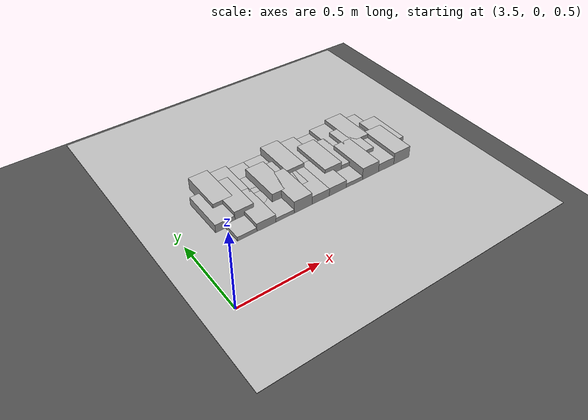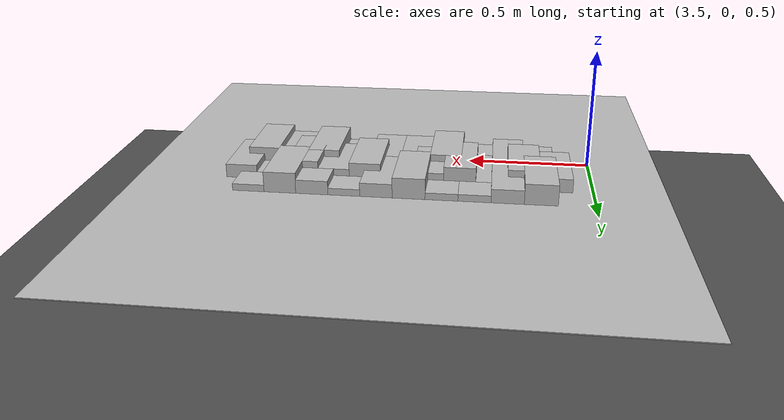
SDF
<sdf version="1.6">
 <world name="default">
  <model name="ground_plane">
   <static>1</static>
   <link name="link">
    <collision name="collision">
     <geometry><plane><normal>0 0 1</normal><size>100 100</size></plane></geometry>
     <surface><friction><ode><mu>100</mu><mu2>50</mu2></ode></friction></surface>
    </collision>
    <visual name="visual">
     <cast_shadows>0</cast_shadows>
     <geometry><plane><normal>0 0 1</normal><size>100 100</size></plane></geometry>
     <material>
      <script><uri>file://media/materials/scripts/gazebo.material</uri><name>Gazebo/Grey</name></script>
     </material>
    </visual>
   </link>
  </model>
  <model name="frc2016_roughterrain_0">
   <link name="link_clone_20">
    <pose>4.34688 0.460993 -0.073164 0 -0 0</pose>
    <inertial>
     <inertia><ixx>nan</ixx><ixy>0</ixy><ixz>0</ixz><iyy>nan</iyy><iyz>0</iyz><izz>nan</izz></inertia>
     <mass>0</mass>
    </inertial>
    <visual name="row2_block6_sm">
     <pose>0 0 0.09698 0 -0 0</pose>
     <geometry><box><size>0.115452 0.257474 0.0254</size></box></geometry>
     <material><shader type="pixel"/></material>
    </visual>
    <visual name="row1_block3_md">
     <pose>0.28575 0.1143 0.10968 0 -0 0</pose>
     <geometry><box><size>0.115452 0.257474 0.0508</size></box></geometry>
     <material><shader type="pixel"/></material>
    </visual>
    <visual name="row1_block5_md">
     <pose>0.05715 0.1143 0.10968 0 -0 0</pose>
     <geometry><box><size>0.115452 0.257474 0.0508</size></box></geometry>
     <material><shader type="pixel"/></material>
    </visual>
    <visual name="row1_block2_lg">
     <pose>0.40005 0.1143 0.12238 0 -0 0</pose>
     <geometry><box><size>0.115452 0.257474 0.0762</size></box></geometry>
     <material><shader type="pixel"/></material>
    </visual>
    <visual name="row1_block4_sm">
     <pose>0.17145 0.1143 0.09698 0 -0 0</pose>
     <geometry><box><size>0.115452 0.257474 0.0254</size></box></geometry>
     <material><shader type="pixel"/></material>
    </visual>
    <visual name="platform">
     <pose>0 0 0.08269 0 -0 0</pose>
     <geometry><box><size>1.91826 2.01688 0.003175</size></box></geometry>
     <material><shader type="pixel"/></material>
    </visual>
    <visual name="row1_block1_sm">
     <pose>0.51435 0.1143 0.09698 0 -0 0</pose>
     <geometry><box><size>0.115452 0.257474 0.0254</size></box></geometry>
     <material><shader type="pixel"/></material>
    </visual>
    <visual name="row1_block6_lg">
     <pose>-0.05715 0.1143 0.12238 0 -0 0</pose>
     <geometry><box><size>0.115452 0.257474 0.0762</size></box></geometry>
     <material><shader type="pixel"/></material>
    </visual>
    <visual name="row1_block7_sm">
     <pose>-0.17145 0.1143 0.09698 0 -0 0</pose>
     <geometry><box><size>0.115452 0.257474 0.0254</size></box></geometry>
     <material><shader type="pixel"/></material>
    </visual>
    <visual name="row1_block8_sm">
     <pose>-0.28575 0.1143 0.09698 0 -0 0</pose>
     <geometry><box><size>0.115452 0.257474 0.0254</size></box></geometry>
     <material><shader type="pixel"/></material>
    </visual>
    <visual name="row1_block9_md">
     <pose>-0.40005 0.1143 0.10968 0 -0 0</pose>
     <geometry><box><size>0.115452 0.257474 0.0508</size></box></geometry>
     <material><shader type="pixel"/></material>
    </visual>
    <visual name="row1_block10_lg">
     <pose>-0.51435 0.1143 0.12238 0 -0 0</pose>
     <geometry><box><size>0.115452 0.257474 0.0762</size></box></geometry>
     <material><shader type="pixel"/></material>
    </visual>
    <visual name="row2_block1_md">
     <pose>0.5715 0 0.10968 0 -0 0</pose>
     <geometry><box><size>0.115452 0.257474 0.0508</size></box></geometry>
     <material><shader type="pixel"/></material>
    </visual>
    <visual name="row2_block2_sm">
     <pose>0.4572 0 0.09698 0 -0 0</pose>
     <geometry><box><size>0.115452 0.257474 0.0254</size></box></geometry>
     <material><shader type="pixel"/></material>
    </visual>
    <visual name="row2_block3_lg">
     <pose>0.3429 0 0.12238 0 -0 0</pose>
     <geometry><box><size>0.115452 0.257474 0.0762</size></box></geometry>
     <material><shader type="pixel"/></material>
    </visual>
    <visual name="row2_block4_md">
     <pose>0.2286 0 0.10968 0 -0 0</pose>
     <geometry><box><size>0.115452 0.257474 0.0508</size></box></geometry>
     <material><shader type="pixel"/></material>
    </visual>
    <visual name="row2_block5_lg">
     <pose>0.1143 0 0.12238 0 -0 0</pose>
     <geometry><box><size>0.115452 0.257474 0.0762</size></box></geometry>
     <material><shader type="pixel"/></material>
    </visual>
    <visual name="row2_block7_md">
     <pose>-0.1143 0 0.10968 0 -0 0</pose>
     <geometry><box><size>0.115452 0.257474 0.0508</size></box></geometry>
     <material><shader type="pixel"/></material>
    </visual>
    <visual name="row2_block8_lg">
     <pose>-0.2286 0 0.12238 0 -0 0</pose>
     <geometry><box><size>0.115452 0.257474 0.0762</size></box></geometry>
     <material><shader type="pixel"/></material>
    </visual>
    <visual name="row2_block9_sm">
     <pose>-0.3429 0 0.09698 0 -0 0</pose>
     <geometry><box><size>0.115452 0.257474 0.0254</size></box></geometry>
     <material><shader type="pixel"/></material>
    </visual>
    <visual name="row2_block10_lg">
     <pose>-0.4572 0 0.12238 0 -0 0</pose>
     <geometry><box><size>0.115452 0.257474 0.0762</size></box></geometry>
     <material><shader type="pixel"/></material>
    </visual>
    <visual name="row2_block11_md">
     <pose>-0.5715 0 0.10968 0 -0 0</pose>
     <geometry><box><size>0.115452 0.257474 0.0508</size></box></geometry>
     <material><shader type="pixel"/></material>
    </visual>
    <visual name="row3_block1_lg">
     <pose>0.51435 -0.1143 0.12238 0 -0 0</pose>
     <geometry><box><size>0.115452 0.257474 0.0762</size></box></geometry>
     <material><shader type="pixel"/></material>
    </visual>
    <visual name="row3_block2_md">
     <pose>0.40005 -0.1143 0.10968 0 -0 0</pose>
     <geometry><box><size>0.115452 0.257474 0.0508</size></box></geometry>
     <material><shader type="pixel"/></material>
    </visual>
    <visual name="row3_block3_lg">
     <pose>0.28575 -0.1143 0.12238 0 -0 0</pose>
     <geometry><box><size>0.115452 0.257474 0.0762</size></box></geometry>
     <material><shader type="pixel"/></material>
    </visual>
    <visual name="row3_block4_sm">
     <pose>0.17145 -0.1143 0.09698 0 -0 0</pose>
     <geometry><box><size>0.115452 0.257474 0.0254</size></box></geometry>
     <material><shader type="pixel"/></material>
    </visual>
    <visual name="row3_block5_md">
     <pose>0.05715 -0.1143 0.10968 0 -0 0</pose>
     <geometry><box><size>0.115452 0.257474 0.0508</size></box></geometry>
     <material><shader type="pixel"/></material>
    </visual>
    <visual name="row3_block6_md">
     <pose>-0.05715 -0.1143 0.10968 0 -0 0</pose>
     <geometry><box><size>0.115452 0.257474 0.0508</size></box></geometry>
     <material><shader type="pixel"/></material>
    </visual>
    <visual name="row3_block8_sm">
     <pose>-0.28575 -0.1143 0.09698 0 -0 0</pose>
     <geometry><box><size>0.115452 0.257474 0.0254</size></box></geometry>
     <material><shader type="pixel"/></material>
    </visual>
    <visual name="row3_block7_lg">
     <pose>-0.17145 -0.1143 0.12238 0 -0 0</pose>
     <geometry><box><size>0.115452 0.257474 0.0762</size></box></geometry>
     <material><shader type="pixel"/></material>
    </visual>
    <visual name="row3_block9_md">
     <pose>-0.40005 -0.1143 0.10968 0 -0 0</pose>
     <geometry><box><size>0.115452 0.257474 0.0508</size></box></geometry>
     <material><shader type="pixel"/></material>
    </visual>
    <visual name="row3_block10_sm">
     <pose>-0.51435 -0.1143 0.09698 0 -0 0</pose>
     <geometry><box><size>0.115452 0.257474 0.0254</size></box></geometry>
     <material><shader type="pixel"/></material>
    </visual>
    <collision name="row2_block5_lg_0">
     <pose>0.1143 0 0.12238 0 -0 0</pose>
     <geometry><box><size>0.115452 0.257474 0.0762</size></box></geometry>
     <surface>
      <friction>
       <ode><mu>1</mu><mu2>1</mu2><fdir1>0 0 0</fdir1><slip1>0</slip1><slip2>0</slip2></ode>
       <torsional>
        <coefficient>1</coefficient>
        <patch_radius>0</patch_radius>
        <surface_radius>0</surface_radius>
        <use_patch_radius>1</use_patch_radius>
        <ode><slip>0</slip></ode>
       </torsional>
      </friction>
      <bounce><restitution_coefficient>0</restitution_coefficient><threshold>1e+06</threshold></bounce>
      <contact>
       <collide_without_contact>0</collide_without_contact>
       <collide_without_contact_bitmask>1</collide_without_contact_bitmask>
       <collide_bitmask>1</collide_bitmask>
       <ode>
        <soft_cfm>0</soft_cfm>
        <soft_erp>0.2</soft_erp>
        <kp>1e+13</kp>
        <kd>1</kd>
        <max_vel>0.01</max_vel>
        <min_depth>0</min_depth>
       </ode>
       <bullet>
        <split_impulse>1</split_impulse>
        <split_impulse_penetration_threshold>-0.01</split_impulse_penetration_threshold>
        <soft_cfm>0</soft_cfm>
        <soft_erp>0.2</soft_erp>
        <kp>1e+13</kp>
        <kd>1</kd>
       </bullet>
      </contact>
     </surface>
    </collision>
    <collision name="platform_0">
     <pose>0 0 0.08269 0 -0 0</pose>
     <geometry><box><size>1.91826 2.01688 0.003175</size></box></geometry>
     <surface>
      <friction>
       <ode><mu>1</mu><mu2>1</mu2><fdir1>0 0 0</fdir1><slip1>0</slip1><slip2>0</slip2></ode>
       <torsional>
        <coefficient>1</coefficient>
        <patch_radius>0</patch_radius>
        <surface_radius>0</surface_radius>
        <use_patch_radius>1</use_patch_radius>
        <ode><slip>0</slip></ode>
       </torsional>
      </friction>
      <bounce><restitution_coefficient>0</restitution_coefficient><threshold>1e+06</threshold></bounce>
      <contact>
       <collide_without_contact>0</collide_without_contact>
       <collide_without_contact_bitmask>1</collide_without_contact_bitmask>
       <collide_bitmask>1</collide_bitmask>
       <ode>
        <soft_cfm>0</soft_cfm>
        <soft_erp>0.2</soft_erp>
        <kp>1e+13</kp>
        <kd>1</kd>
        <max_vel>0.01</max_vel>
        <min_depth>0</min_depth>
       </ode>
       <bullet>
        <split_impulse>1</split_impulse>
        <split_impulse_penetration_threshold>-0.01</split_impulse_penetration_threshold>
        <soft_cfm>0</soft_cfm>
        <soft_erp>0.2</soft_erp>
        <kp>1e+13</kp>
        <kd>1</kd>
       </bullet>
      </contact>
     </surface>
    </collision>
    <collision name="row1_block1_sm_0">
     <pose>0.51435 0.1143 0.09698 0 -0 0</pose>
     <geometry><box><size>0.115452 0.257474 0.0254</size></box></geometry>
     <surface>
      <friction>
       <ode><mu>1</mu><mu2>1</mu2><fdir1>0 0 0</fdir1><slip1>0</slip1><slip2>0</slip2></ode>
       <torsional>
        <coefficient>1</coefficient>
        <patch_radius>0</patch_radius>
        <surface_radius>0</surface_radius>
        <use_patch_radius>1</use_patch_radius>
        <ode><slip>0</slip></ode>
       </torsional>
      </friction>
      <bounce><restitution_coefficient>0</restitution_coefficient><threshold>1e+06</threshold></bounce>
      <contact>
       <collide_without_contact>0</collide_without_contact>
       <collide_without_contact_bitmask>1</collide_without_contact_bitmask>
       <collide_bitmask>1</collide_bitmask>
       <ode>
        <soft_cfm>0</soft_cfm>
        <soft_erp>0.2</soft_erp>
        <kp>1e+13</kp>
        <kd>1</kd>
        <max_vel>0.01</max_vel>
        <min_depth>0</min_depth>
       </ode>
       <bullet>
        <split_impulse>1</split_impulse>
        <split_impulse_penetration_threshold>-0.01</split_impulse_penetration_threshold>
        <soft_cfm>0</soft_cfm>
        <soft_erp>0.2</soft_erp>
        <kp>1e+13</kp>
        <kd>1</kd>
       </bullet>
      </contact>
     </surface>
    </collision>
    <collision name="row1_block3_md_0">
     <pose>0.28575 0.1143 0.10968 0 -0 0</pose>
     <geometry><box><size>0.115452 0.257474 0.0508</size></box></geometry>
     <surface>
      <friction>
       <ode><mu>1</mu><mu2>1</mu2><fdir1>0 0 0</fdir1><slip1>0</slip1><slip2>0</slip2></ode>
       <torsional>
        <coefficient>1</coefficient>
        <patch_radius>0</patch_radius>
        <surface_radius>0</surface_radius>
        <use_patch_radius>1</use_patch_radius>
        <ode><slip>0</slip></ode>
       </torsional>
      </friction>
      <bounce><restitution_coefficient>0</restitution_coefficient><threshold>1e+06</threshold></bounce>
      <contact>
       <collide_without_contact>0</collide_without_contact>
       <collide_without_contact_bitmask>1</collide_without_contact_bitmask>
       <collide_bitmask>1</collide_bitmask>
       <ode>
        <soft_cfm>0</soft_cfm>
        <soft_erp>0.2</soft_erp>
        <kp>1e+13</kp>
        <kd>1</kd>
        <max_vel>0.01</max_vel>
        <min_depth>0</min_depth>
       </ode>
       <bullet>
        <split_impulse>1</split_impulse>
        <split_impulse_penetration_threshold>-0.01</split_impulse_penetration_threshold>
        <soft_cfm>0</soft_cfm>
        <soft_erp>0.2</soft_erp>
        <kp>1e+13</kp>
        <kd>1</kd>
       </bullet>
      </contact>
     </surface>
    </collision>
    <collision name="row1_block5_md_0">
     <pose>0.05715 0.1143 0.10968 0 -0 0</pose>
     <geometry><box><size>0.115452 0.257474 0.0508</size></box></geometry>
     <surface>
      <friction>
       <ode><mu>1</mu><mu2>1</mu2><fdir1>0 0 0</fdir1><slip1>0</slip1><slip2>0</slip2></ode>
       <torsional>
        <coefficient>1</coefficient>
        <patch_radius>0</patch_radius>
        <surface_radius>0</surface_radius>
        <use_patch_radius>1</use_patch_radius>
        <ode><slip>0</slip></ode>
       </torsional>
      </friction>
      <bounce><restitution_coefficient>0</restitution_coefficient><threshold>1e+06</threshold></bounce>
      <contact>
       <collide_without_contact>0</collide_without_contact>
       <collide_without_contact_bitmask>1</collide_without_contact_bitmask>
       <collide_bitmask>1</collide_bitmask>
       <ode>
        <soft_cfm>0</soft_cfm>
        <soft_erp>0.2</soft_erp>
        <kp>1e+13</kp>
        <kd>1</kd>
        <max_vel>0.01</max_vel>
        <min_depth>0</min_depth>
       </ode>
       <bullet>
        <split_impulse>1</split_impulse>
        <split_impulse_penetration_threshold>-0.01</split_impulse_penetration_threshold>
        <soft_cfm>0</soft_cfm>
        <soft_erp>0.2</soft_erp>
        <kp>1e+13</kp>
        <kd>1</kd>
       </bullet>
      </contact>
     </surface>
    </collision>
    <collision name="row1_block2_lg_0">
     <pose>0.40005 0.1143 0.12238 0 -0 0</pose>
     <geometry><box><size>0.115452 0.257474 0.0762</size></box></geometry>
     <surface>
      <friction>
       <ode><mu>1</mu><mu2>1</mu2><fdir1>0 0 0</fdir1><slip1>0</slip1><slip2>0</slip2></ode>
       <torsional>
        <coefficient>1</coefficient>
        <patch_radius>0</patch_radius>
        <surface_radius>0</surface_radius>
        <use_patch_radius>1</use_patch_radius>
        <ode><slip>0</slip></ode>
       </torsional>
      </friction>
      <bounce><restitution_coefficient>0</restitution_coefficient><threshold>1e+06</threshold></bounce>
      <contact>
       <collide_without_contact>0</collide_without_contact>
       <collide_without_contact_bitmask>1</collide_without_contact_bitmask>
       <collide_bitmask>1</collide_bitmask>
       <ode>
        <soft_cfm>0</soft_cfm>
        <soft_erp>0.2</soft_erp>
        <kp>1e+13</kp>
        <kd>1</kd>
        <max_vel>0.01</max_vel>
        <min_depth>0</min_depth>
       </ode>
       <bullet>
        <split_impulse>1</split_impulse>
        <split_impulse_penetration_threshold>-0.01</split_impulse_penetration_threshold>
        <soft_cfm>0</soft_cfm>
        <soft_erp>0.2</soft_erp>
        <kp>1e+13</kp>
        <kd>1</kd>
       </bullet>
      </contact>
     </surface>
    </collision>
    <collision name="row1_block4_sm_0">
     <pose>0.17145 0.1143 0.09698 0 -0 0</pose>
     <geometry><box><size>0.115452 0.257474 0.0254</size></box></geometry>
     <surface>
      <friction>
       <ode><mu>1</mu><mu2>1</mu2><fdir1>0 0 0</fdir1><slip1>0</slip1><slip2>0</slip2></ode>
       <torsional>
        <coefficient>1</coefficient>
        <patch_radius>0</patch_radius>
        <surface_radius>0</surface_radius>
        <use_patch_radius>1</use_patch_radius>
        <ode><slip>0</slip></ode>
       </torsional>
      </friction>
      <bounce><restitution_coefficient>0</restitution_coefficient><threshold>1e+06</threshold></bounce>
      <contact>
       <collide_without_contact>0</collide_without_contact>
       <collide_without_contact_bitmask>1</collide_without_contact_bitmask>
       <collide_bitmask>1</collide_bitmask>
       <ode>
        <soft_cfm>0</soft_cfm>
        <soft_erp>0.2</soft_erp>
        <kp>1e+13</kp>
        <kd>1</kd>
        <max_vel>0.01</max_vel>
        <min_depth>0</min_depth>
       </ode>
       <bullet>
        <split_impulse>1</split_impulse>
        <split_impulse_penetration_threshold>-0.01</split_impulse_penetration_threshold>
        <soft_cfm>0</soft_cfm>
        <soft_erp>0.2</soft_erp>
        <kp>1e+13</kp>
        <kd>1</kd>
       </bullet>
      </contact>
     </surface>
    </collision>
    <collision name="row1_block6_lg_0">
     <pose>-0.05715 0.1143 0.12238 0 -0 0</pose>
     <geometry><box><size>0.115452 0.257474 0.0762</size></box></geometry>
     <surface>
      <friction>
       <ode><mu>1</mu><mu2>1</mu2><fdir1>0 0 0</fdir1><slip1>0</slip1><slip2>0</slip2></ode>
       <torsional>
        <coefficient>1</coefficient>
        <patch_radius>0</patch_radius>
        <surface_radius>0</surface_radius>
        <use_patch_radius>1</use_patch_radius>
        <ode><slip>0</slip></ode>
       </torsional>
      </friction>
      <bounce><restitution_coefficient>0</restitution_coefficient><threshold>1e+06</threshold></bounce>
      <contact>
       <collide_without_contact>0</collide_without_contact>
       <collide_without_contact_bitmask>1</collide_without_contact_bitmask>
       <collide_bitmask>1</collide_bitmask>
       <ode>
        <soft_cfm>0</soft_cfm>
        <soft_erp>0.2</soft_erp>
        <kp>1e+13</kp>
        <kd>1</kd>
        <max_vel>0.01</max_vel>
        <min_depth>0</min_depth>
       </ode>
       <bullet>
        <split_impulse>1</split_impulse>
        <split_impulse_penetration_threshold>-0.01</split_impulse_penetration_threshold>
        <soft_cfm>0</soft_cfm>
        <soft_erp>0.2</soft_erp>
        <kp>1e+13</kp>
        <kd>1</kd>
       </bullet>
      </contact>
     </surface>
    </collision>
    <collision name="row1_block7_sm_0">
     <pose>-0.17145 0.1143 0.09698 0 -0 0</pose>
     <geometry><box><size>0.115452 0.257474 0.0254</size></box></geometry>
     <surface>
      <friction>
       <ode><mu>1</mu><mu2>1</mu2><fdir1>0 0 0</fdir1><slip1>0</slip1><slip2>0</slip2></ode>
       <torsional>
        <coefficient>1</coefficient>
        <patch_radius>0</patch_radius>
        <surface_radius>0</surface_radius>
        <use_patch_radius>1</use_patch_radius>
        <ode><slip>0</slip></ode>
       </torsional>
      </friction>
      <bounce><restitution_coefficient>0</restitution_coefficient><threshold>1e+06</threshold></bounce>
      <contact>
       <collide_without_contact>0</collide_without_contact>
       <collide_without_contact_bitmask>1</collide_without_contact_bitmask>
       <collide_bitmask>1</collide_bitmask>
       <ode>
        <soft_cfm>0</soft_cfm>
        <soft_erp>0.2</soft_erp>
        <kp>1e+13</kp>
        <kd>1</kd>
        <max_vel>0.01</max_vel>
        <min_depth>0</min_depth>
       </ode>
       <bullet>
        <split_impulse>1</split_impulse>
        <split_impulse_penetration_threshold>-0.01</split_impulse_penetration_threshold>
        <soft_cfm>0</soft_cfm>
        <soft_erp>0.2</soft_erp>
        <kp>1e+13</kp>
        <kd>1</kd>
       </bullet>
      </contact>
     </surface>
    </collision>
    <collision name="row1_block8_sm_0">
     <pose>-0.28575 0.1143 0.09698 0 -0 0</pose>
     <geometry><box><size>0.115452 0.257474 0.0254</size></box></geometry>
     <surface>
      <friction>
       <ode><mu>1</mu><mu2>1</mu2><fdir1>0 0 0</fdir1><slip1>0</slip1><slip2>0</slip2></ode>
       <torsional>
        <coefficient>1</coefficient>
        <patch_radius>0</patch_radius>
        <surface_radius>0</surface_radius>
        <use_patch_radius>1</use_patch_radius>
        <ode><slip>0</slip></ode>
       </torsional>
      </friction>
      <bounce><restitution_coefficient>0</restitution_coefficient><threshold>1e+06</threshold></bounce>
      <contact>
       <collide_without_contact>0</collide_without_contact>
       <collide_without_contact_bitmask>1</collide_without_contact_bitmask>
       <collide_bitmask>1</collide_bitmask>
       <ode>
        <soft_cfm>0</soft_cfm>
        <soft_erp>0.2</soft_erp>
        <kp>1e+13</kp>
        <kd>1</kd>
        <max_vel>0.01</max_vel>
        <min_depth>0</min_depth>
       </ode>
       <bullet>
        <split_impulse>1</split_impulse>
        <split_impulse_penetration_threshold>-0.01</split_impulse_penetration_threshold>
        <soft_cfm>0</soft_cfm>
        <soft_erp>0.2</soft_erp>
        <kp>1e+13</kp>
        <kd>1</kd>
       </bullet>
      </contact>
     </surface>
    </collision>
    <collision name="row1_block10_lg_0">
     <pose>-0.51435 0.1143 0.12238 0 -0 0</pose>
     <geometry><box><size>0.115452 0.257474 0.0762</size></box></geometry>
     <surface>
      <friction>
       <ode><mu>1</mu><mu2>1</mu2><fdir1>0 0 0</fdir1><slip1>0</slip1><slip2>0</slip2></ode>
       <torsional>
        <coefficient>1</coefficient>
        <patch_radius>0</patch_radius>
        <surface_radius>0</surface_radius>
        <use_patch_radius>1</use_patch_radius>
        <ode><slip>0</slip></ode>
       </torsional>
      </friction>
      <bounce><restitution_coefficient>0</restitution_coefficient><threshold>1e+06</threshold></bounce>
      <contact>
       <collide_without_contact>0</collide_without_contact>
       <collide_without_contact_bitmask>1</collide_without_contact_bitmask>
       <collide_bitmask>1</collide_bitmask>
       <ode>
        <soft_cfm>0</soft_cfm>
        <soft_erp>0.2</soft_erp>
        <kp>1e+13</kp>
        <kd>1</kd>
        <max_vel>0.01</max_vel>
        <min_depth>0</min_depth>
       </ode>
       <bullet>
        <split_impulse>1</split_impulse>
        <split_impulse_penetration_threshold>-0.01</split_impulse_penetration_threshold>
        <soft_cfm>0</soft_cfm>
        <soft_erp>0.2</soft_erp>
        <kp>1e+13</kp>
        <kd>1</kd>
       </bullet>
      </contact>
     </surface>
    </collision>
    <collision name="row2_block2_sm_0">
     <pose>0.4572 0 0.09698 0 -0 0</pose>
     <geometry><box><size>0.115452 0.257474 0.0254</size></box></geometry>
     <surface>
      <friction>
       <ode><mu>1</mu><mu2>1</mu2><fdir1>0 0 0</fdir1><slip1>0</slip1><slip2>0</slip2></ode>
       <torsional>
        <coefficient>1</coefficient>
        <patch_radius>0</patch_radius>
        <surface_radius>0</surface_radius>
        <use_patch_radius>1</use_patch_radius>
        <ode><slip>0</slip></ode>
       </torsional>
      </friction>
      <bounce><restitution_coefficient>0</restitution_coefficient><threshold>1e+06</threshold></bounce>
      <contact>
       <collide_without_contact>0</collide_without_contact>
       <collide_without_contact_bitmask>1</collide_without_contact_bitmask>
       <collide_bitmask>1</collide_bitmask>
       <ode>
        <soft_cfm>0</soft_cfm>
        <soft_erp>0.2</soft_erp>
        <kp>1e+13</kp>
        <kd>1</kd>
        <max_vel>0.01</max_vel>
        <min_depth>0</min_depth>
       </ode>
       <bullet>
        <split_impulse>1</split_impulse>
        <split_impulse_penetration_threshold>-0.01</split_impulse_penetration_threshold>
        <soft_cfm>0</soft_cfm>
        <soft_erp>0.2</soft_erp>
        <kp>1e+13</kp>
        <kd>1</kd>
       </bullet>
      </contact>
     </surface>
    </collision>
    <collision name="row1_block9_md_0">
     <pose>-0.40005 0.1143 0.10968 0 -0 0</pose>
     <geometry><box><size>0.115452 0.257474 0.0508</size></box></geometry>
     <surface>
      <friction>
       <ode><mu>1</mu><mu2>1</mu2><fdir1>0 0 0</fdir1><slip1>0</slip1><slip2>0</slip2></ode>
       <torsional>
        <coefficient>1</coefficient>
        <patch_radius>0</patch_radius>
        <surface_radius>0</surface_radius>
        <use_patch_radius>1</use_patch_radius>
        <ode><slip>0</slip></ode>
       </torsional>
      </friction>
      <bounce><restitution_coefficient>0</restitution_coefficient><threshold>1e+06</threshold></bounce>
      <contact>
       <collide_without_contact>0</collide_without_contact>
       <collide_without_contact_bitmask>1</collide_without_contact_bitmask>
       <collide_bitmask>1</collide_bitmask>
       <ode>
        <soft_cfm>0</soft_cfm>
        <soft_erp>0.2</soft_erp>
        <kp>1e+13</kp>
        <kd>1</kd>
        <max_vel>0.01</max_vel>
        <min_depth>0</min_depth>
       </ode>
       <bullet>
        <split_impulse>1</split_impulse>
        <split_impulse_penetration_threshold>-0.01</split_impulse_penetration_threshold>
        <soft_cfm>0</soft_cfm>
        <soft_erp>0.2</soft_erp>
        <kp>1e+13</kp>
        <kd>1</kd>
       </bullet>
      </contact>
     </surface>
    </collision>
    <collision name="row2_block1_md_0">
     <pose>0.5715 0 0.10968 0 -0 0</pose>
     <geometry><box><size>0.115452 0.257474 0.0508</size></box></geometry>
     <surface>
      <friction>
       <ode><mu>1</mu><mu2>1</mu2><fdir1>0 0 0</fdir1><slip1>0</slip1><slip2>0</slip2></ode>
       <torsional>
        <coefficient>1</coefficient>
        <patch_radius>0</patch_radius>
        <surface_radius>0</surface_radius>
        <use_patch_radius>1</use_patch_radius>
        <ode><slip>0</slip></ode>
       </torsional>
      </friction>
      <bounce><restitution_coefficient>0</restitution_coefficient><threshold>1e+06</threshold></bounce>
      <contact>
       <collide_without_contact>0</collide_without_contact>
       <collide_without_contact_bitmask>1</collide_without_contact_bitmask>
       <collide_bitmask>1</collide_bitmask>
       <ode>
        <soft_cfm>0</soft_cfm>
        <soft_erp>0.2</soft_erp>
        <kp>1e+13</kp>
        <kd>1</kd>
        <max_vel>0.01</max_vel>
        <min_depth>0</min_depth>
       </ode>
       <bullet>
        <split_impulse>1</split_impulse>
        <split_impulse_penetration_threshold>-0.01</split_impulse_penetration_threshold>
        <soft_cfm>0</soft_cfm>
        <soft_erp>0.2</soft_erp>
        <kp>1e+13</kp>
        <kd>1</kd>
       </bullet>
      </contact>
     </surface>
    </collision>
    <collision name="row2_block7_md_0">
     <pose>-0.1143 0 0.10968 0 -0 0</pose>
     <geometry><box><size>0.115452 0.257474 0.0508</size></box></geometry>
     <surface>
      <friction>
       <ode><mu>1</mu><mu2>1</mu2><fdir1>0 0 0</fdir1><slip1>0</slip1><slip2>0</slip2></ode>
       <torsional>
        <coefficient>1</coefficient>
        <patch_radius>0</patch_radius>
        <surface_radius>0</surface_radius>
        <use_patch_radius>1</use_patch_radius>
        <ode><slip>0</slip></ode>
       </torsional>
      </friction>
      <bounce><restitution_coefficient>0</restitution_coefficient><threshold>1e+06</threshold></bounce>
      <contact>
       <collide_without_contact>0</collide_without_contact>
       <collide_without_contact_bitmask>1</collide_without_contact_bitmask>
       <collide_bitmask>1</collide_bitmask>
       <ode>
        <soft_cfm>0</soft_cfm>
        <soft_erp>0.2</soft_erp>
        <kp>1e+13</kp>
        <kd>1</kd>
        <max_vel>0.01</max_vel>
        <min_depth>0</min_depth>
       </ode>
       <bullet>
        <split_impulse>1</split_impulse>
        <split_impulse_penetration_threshold>-0.01</split_impulse_penetration_threshold>
        <soft_cfm>0</soft_cfm>
        <soft_erp>0.2</soft_erp>
        <kp>1e+13</kp>
        <kd>1</kd>
       </bullet>
      </contact>
     </surface>
    </collision>
    <collision name="row2_block4_md_0">
     <pose>0.2286 0 0.10968 0 -0 0</pose>
     <geometry><box><size>0.115452 0.257474 0.0508</size></box></geometry>
     <surface>
      <friction>
       <ode><mu>1</mu><mu2>1</mu2><fdir1>0 0 0</fdir1><slip1>0</slip1><slip2>0</slip2></ode>
       <torsional>
        <coefficient>1</coefficient>
        <patch_radius>0</patch_radius>
        <surface_radius>0</surface_radius>
        <use_patch_radius>1</use_patch_radius>
        <ode><slip>0</slip></ode>
       </torsional>
      </friction>
      <bounce><restitution_coefficient>0</restitution_coefficient><threshold>1e+06</threshold></bounce>
      <contact>
       <collide_without_contact>0</collide_without_contact>
       <collide_without_contact_bitmask>1</collide_without_contact_bitmask>
       <collide_bitmask>1</collide_bitmask>
       <ode>
        <soft_cfm>0</soft_cfm>
        <soft_erp>0.2</soft_erp>
        <kp>1e+13</kp>
        <kd>1</kd>
        <max_vel>0.01</max_vel>
        <min_depth>0</min_depth>
       </ode>
       <bullet>
        <split_impulse>1</split_impulse>
        <split_impulse_penetration_threshold>-0.01</split_impulse_penetration_threshold>
        <soft_cfm>0</soft_cfm>
        <soft_erp>0.2</soft_erp>
        <kp>1e+13</kp>
        <kd>1</kd>
       </bullet>
      </contact>
     </surface>
    </collision>
    <collision name="row2_block3_lg_0">
     <pose>0.3429 0 0.12238 0 -0 0</pose>
     <geometry><box><size>0.115452 0.257474 0.0762</size></box></geometry>
     <surface>
      <friction>
       <ode><mu>1</mu><mu2>1</mu2><fdir1>0 0 0</fdir1><slip1>0</slip1><slip2>0</slip2></ode>
       <torsional>
        <coefficient>1</coefficient>
        <patch_radius>0</patch_radius>
        <surface_radius>0</surface_radius>
        <use_patch_radius>1</use_patch_radius>
        <ode><slip>0</slip></ode>
       </torsional>
      </friction>
      <bounce><restitution_coefficient>0</restitution_coefficient><threshold>1e+06</threshold></bounce>
      <contact>
       <collide_without_contact>0</collide_without_contact>
       <collide_without_contact_bitmask>1</collide_without_contact_bitmask>
       <collide_bitmask>1</collide_bitmask>
       <ode>
        <soft_cfm>0</soft_cfm>
        <soft_erp>0.2</soft_erp>
        <kp>1e+13</kp>
        <kd>1</kd>
        <max_vel>0.01</max_vel>
        <min_depth>0</min_depth>
       </ode>
       <bullet>
        <split_impulse>1</split_impulse>
        <split_impulse_penetration_threshold>-0.01</split_impulse_penetration_threshold>
        <soft_cfm>0</soft_cfm>
        <soft_erp>0.2</soft_erp>
        <kp>1e+13</kp>
        <kd>1</kd>
       </bullet>
      </contact>
     </surface>
    </collision>
    <collision name="row2_block6_sm_0">
     <pose>0 0 0.09698 0 -0 0</pose>
     <geometry><box><size>0.115452 0.257474 0.0254</size></box></geometry>
     <surface>
      <friction>
       <ode><mu>1</mu><mu2>1</mu2><fdir1>0 0 0</fdir1><slip1>0</slip1><slip2>0</slip2></ode>
       <torsional>
        <coefficient>1</coefficient>
        <patch_radius>0</patch_radius>
        <surface_radius>0</surface_radius>
        <use_patch_radius>1</use_patch_radius>
        <ode><slip>0</slip></ode>
       </torsional>
      </friction>
      <bounce><restitution_coefficient>0</restitution_coefficient><threshold>1e+06</threshold></bounce>
      <contact>
       <collide_without_contact>0</collide_without_contact>
       <collide_without_contact_bitmask>1</collide_without_contact_bitmask>
       <collide_bitmask>1</collide_bitmask>
       <ode>
        <soft_cfm>0</soft_cfm>
        <soft_erp>0.2</soft_erp>
        <kp>1e+13</kp>
        <kd>1</kd>
        <max_vel>0.01</max_vel>
        <min_depth>0</min_depth>
       </ode>
       <bullet>
        <split_impulse>1</split_impulse>
        <split_impulse_penetration_threshold>-0.01</split_impulse_penetration_threshold>
        <soft_cfm>0</soft_cfm>
        <soft_erp>0.2</soft_erp>
        <kp>1e+13</kp>
        <kd>1</kd>
       </bullet>
      </contact>
     </surface>
    </collision>
    <collision name="row2_block8_lg_0">
     <pose>-0.2286 0 0.12238 0 -0 0</pose>
     <geometry><box><size>0.115452 0.257474 0.0762</size></box></geometry>
     <surface>
      <friction>
       <ode><mu>1</mu><mu2>1</mu2><fdir1>0 0 0</fdir1><slip1>0</slip1><slip2>0</slip2></ode>
       <torsional>
        <coefficient>1</coefficient>
        <patch_radius>0</patch_radius>
        <surface_radius>0</surface_radius>
        <use_patch_radius>1</use_patch_radius>
        <ode><slip>0</slip></ode>
       </torsional>
      </friction>
      <bounce><restitution_coefficient>0</restitution_coefficient><threshold>1e+06</threshold></bounce>
      <contact>
       <collide_without_contact>0</collide_without_contact>
       <collide_without_contact_bitmask>1</collide_without_contact_bitmask>
       <collide_bitmask>1</collide_bitmask>
       <ode>
        <soft_cfm>0</soft_cfm>
        <soft_erp>0.2</soft_erp>
        <kp>1e+13</kp>
        <kd>1</kd>
        <max_vel>0.01</max_vel>
        <min_depth>0</min_depth>
       </ode>
       <bullet>
        <split_impulse>1</split_impulse>
        <split_impulse_penetration_threshold>-0.01</split_impulse_penetration_threshold>
        <soft_cfm>0</soft_cfm>
        <soft_erp>0.2</soft_erp>
        <kp>1e+13</kp>
        <kd>1</kd>
       </bullet>
      </contact>
     </surface>
    </collision>
    <collision name="row2_block10_lg_0">
     <pose>-0.4572 0 0.12238 0 -0 0</pose>
     <geometry><box><size>0.115452 0.257474 0.0762</size></box></geometry>
     <surface>
      <friction>
       <ode><mu>1</mu><mu2>1</mu2><fdir1>0 0 0</fdir1><slip1>0</slip1><slip2>0</slip2></ode>
       <torsional>
        <coefficient>1</coefficient>
        <patch_radius>0</patch_radius>
        <surface_radius>0</surface_radius>
        <use_patch_radius>1</use_patch_radius>
        <ode><slip>0</slip></ode>
       </torsional>
      </friction>
      <bounce><restitution_coefficient>0</restitution_coefficient><threshold>1e+06</threshold></bounce>
      <contact>
       <collide_without_contact>0</collide_without_contact>
       <collide_without_contact_bitmask>1</collide_without_contact_bitmask>
       <collide_bitmask>1</collide_bitmask>
       <ode>
        <soft_cfm>0</soft_cfm>
        <soft_erp>0.2</soft_erp>
        <kp>1e+13</kp>
        <kd>1</kd>
        <max_vel>0.01</max_vel>
        <min_depth>0</min_depth>
       </ode>
       <bullet>
        <split_impulse>1</split_impulse>
        <split_impulse_penetration_threshold>-0.01</split_impulse_penetration_threshold>
        <soft_cfm>0</soft_cfm>
        <soft_erp>0.2</soft_erp>
        <kp>1e+13</kp>
        <kd>1</kd>
       </bullet>
      </contact>
     </surface>
    </collision>
    <collision name="row2_block9_sm_0">
     <pose>-0.3429 0 0.09698 0 -0 0</pose>
     <geometry><box><size>0.115452 0.257474 0.0254</size></box></geometry>
     <surface>
      <friction>
       <ode><mu>1</mu><mu2>1</mu2><fdir1>0 0 0</fdir1><slip1>0</slip1><slip2>0</slip2></ode>
       <torsional>
        <coefficient>1</coefficient>
        <patch_radius>0</patch_radius>
        <surface_radius>0</surface_radius>
        <use_patch_radius>1</use_patch_radius>
        <ode><slip>0</slip></ode>
       </torsional>
      </friction>
      <bounce><restitution_coefficient>0</restitution_coefficient><threshold>1e+06</threshold></bounce>
      <contact>
       <collide_without_contact>0</collide_without_contact>
       <collide_without_contact_bitmask>1</collide_without_contact_bitmask>
       <collide_bitmask>1</collide_bitmask>
       <ode>
        <soft_cfm>0</soft_cfm>
        <soft_erp>0.2</soft_erp>
        <kp>1e+13</kp>
        <kd>1</kd>
        <max_vel>0.01</max_vel>
        <min_depth>0</min_depth>
       </ode>
       <bullet>
        <split_impulse>1</split_impulse>
        <split_impulse_penetration_threshold>-0.01</split_impulse_penetration_threshold>
        <soft_cfm>0</soft_cfm>
        <soft_erp>0.2</soft_erp>
        <kp>1e+13</kp>
        <kd>1</kd>
       </bullet>
      </contact>
     </surface>
    </collision>
    <collision name="row3_block4_sm_0">
     <pose>0.17145 -0.1143 0.09698 0 -0 0</pose>
     <geometry><box><size>0.115452 0.257474 0.0254</size></box></geometry>
     <surface>
      <friction>
       <ode><mu>1</mu><mu2>1</mu2><fdir1>0 0 0</fdir1><slip1>0</slip1><slip2>0</slip2></ode>
       <torsional>
        <coefficient>1</coefficient>
        <patch_radius>0</patch_radius>
        <surface_radius>0</surface_radius>
        <use_patch_radius>1</use_patch_radius>
        <ode><slip>0</slip></ode>
       </torsional>
      </friction>
      <bounce><restitution_coefficient>0</restitution_coefficient><threshold>1e+06</threshold></bounce>
      <contact>
       <collide_without_contact>0</collide_without_contact>
       <collide_without_contact_bitmask>1</collide_without_contact_bitmask>
       <collide_bitmask>1</collide_bitmask>
       <ode>
        <soft_cfm>0</soft_cfm>
        <soft_erp>0.2</soft_erp>
        <kp>1e+13</kp>
        <kd>1</kd>
        <max_vel>0.01</max_vel>
        <min_depth>0</min_depth>
       </ode>
       <bullet>
        <split_impulse>1</split_impulse>
        <split_impulse_penetration_threshold>-0.01</split_impulse_penetration_threshold>
        <soft_cfm>0</soft_cfm>
        <soft_erp>0.2</soft_erp>
        <kp>1e+13</kp>
        <kd>1</kd>
       </bullet>
      </contact>
     </surface>
    </collision>
    <collision name="row2_block11_md_0">
     <pose>-0.5715 0 0.10968 0 -0 0</pose>
     <geometry><box><size>0.115452 0.257474 0.0508</size></box></geometry>
     <surface>
      <friction>
       <ode><mu>1</mu><mu2>1</mu2><fdir1>0 0 0</fdir1><slip1>0</slip1><slip2>0</slip2></ode>
       <torsional>
        <coefficient>1</coefficient>
        <patch_radius>0</patch_radius>
        <surface_radius>0</surface_radius>
        <use_patch_radius>1</use_patch_radius>
        <ode><slip>0</slip></ode>
       </torsional>
      </friction>
      <bounce><restitution_coefficient>0</restitution_coefficient><threshold>1e+06</threshold></bounce>
      <contact>
       <collide_without_contact>0</collide_without_contact>
       <collide_without_contact_bitmask>1</collide_without_contact_bitmask>
       <collide_bitmask>1</collide_bitmask>
       <ode>
        <soft_cfm>0</soft_cfm>
        <soft_erp>0.2</soft_erp>
        <kp>1e+13</kp>
        <kd>1</kd>
        <max_vel>0.01</max_vel>
        <min_depth>0</min_depth>
       </ode>
       <bullet>
        <split_impulse>1</split_impulse>
        <split_impulse_penetration_threshold>-0.01</split_impulse_penetration_threshold>
        <soft_cfm>0</soft_cfm>
        <soft_erp>0.2</soft_erp>
        <kp>1e+13</kp>
        <kd>1</kd>
       </bullet>
      </contact>
     </surface>
    </collision>
    <collision name="row3_block2_md_0">
     <pose>0.40005 -0.1143 0.10968 0 -0 0</pose>
     <geometry><box><size>0.115452 0.257474 0.0508</size></box></geometry>
     <surface>
      <friction>
       <ode><mu>1</mu><mu2>1</mu2><fdir1>0 0 0</fdir1><slip1>0</slip1><slip2>0</slip2></ode>
       <torsional>
        <coefficient>1</coefficient>
        <patch_radius>0</patch_radius>
        <surface_radius>0</surface_radius>
        <use_patch_radius>1</use_patch_radius>
        <ode><slip>0</slip></ode>
       </torsional>
      </friction>
      <bounce><restitution_coefficient>0</restitution_coefficient><threshold>1e+06</threshold></bounce>
      <contact>
       <collide_without_contact>0</collide_without_contact>
       <collide_without_contact_bitmask>1</collide_without_contact_bitmask>
       <collide_bitmask>1</collide_bitmask>
       <ode>
        <soft_cfm>0</soft_cfm>
        <soft_erp>0.2</soft_erp>
        <kp>1e+13</kp>
        <kd>1</kd>
        <max_vel>0.01</max_vel>
        <min_depth>0</min_depth>
       </ode>
       <bullet>
        <split_impulse>1</split_impulse>
        <split_impulse_penetration_threshold>-0.01</split_impulse_penetration_threshold>
        <soft_cfm>0</soft_cfm>
        <soft_erp>0.2</soft_erp>
        <kp>1e+13</kp>
        <kd>1</kd>
       </bullet>
      </contact>
     </surface>
    </collision>
    <collision name="row3_block1_lg_0">
     <pose>0.51435 -0.1143 0.12238 0 -0 0</pose>
     <geometry><box><size>0.115452 0.257474 0.0762</size></box></geometry>
     <surface>
      <friction>
       <ode><mu>1</mu><mu2>1</mu2><fdir1>0 0 0</fdir1><slip1>0</slip1><slip2>0</slip2></ode>
       <torsional>
        <coefficient>1</coefficient>
        <patch_radius>0</patch_radius>
        <surface_radius>0</surface_radius>
        <use_patch_radius>1</use_patch_radius>
        <ode><slip>0</slip></ode>
       </torsional>
      </friction>
      <bounce><restitution_coefficient>0</restitution_coefficient><threshold>1e+06</threshold></bounce>
      <contact>
       <collide_without_contact>0</collide_without_contact>
       <collide_without_contact_bitmask>1</collide_without_contact_bitmask>
       <collide_bitmask>1</collide_bitmask>
       <ode>
        <soft_cfm>0</soft_cfm>
        <soft_erp>0.2</soft_erp>
        <kp>1e+13</kp>
        <kd>1</kd>
        <max_vel>0.01</max_vel>
        <min_depth>0</min_depth>
       </ode>
       <bullet>
        <split_impulse>1</split_impulse>
        <split_impulse_penetration_threshold>-0.01</split_impulse_penetration_threshold>
        <soft_cfm>0</soft_cfm>
        <soft_erp>0.2</soft_erp>
        <kp>1e+13</kp>
        <kd>1</kd>
       </bullet>
      </contact>
     </surface>
    </collision>
    <collision name="row3_block3_lg_0">
     <pose>0.28575 -0.1143 0.12238 0 -0 0</pose>
     <geometry><box><size>0.115452 0.257474 0.0762</size></box></geometry>
     <surface>
      <friction>
       <ode><mu>1</mu><mu2>1</mu2><fdir1>0 0 0</fdir1><slip1>0</slip1><slip2>0</slip2></ode>
       <torsional>
        <coefficient>1</coefficient>
        <patch_radius>0</patch_radius>
        <surface_radius>0</surface_radius>
        <use_patch_radius>1</use_patch_radius>
        <ode><slip>0</slip></ode>
       </torsional>
      </friction>
      <bounce><restitution_coefficient>0</restitution_coefficient><threshold>1e+06</threshold></bounce>
      <contact>
       <collide_without_contact>0</collide_without_contact>
       <collide_without_contact_bitmask>1</collide_without_contact_bitmask>
       <collide_bitmask>1</collide_bitmask>
       <ode>
        <soft_cfm>0</soft_cfm>
        <soft_erp>0.2</soft_erp>
        <kp>1e+13</kp>
        <kd>1</kd>
        <max_vel>0.01</max_vel>
        <min_depth>0</min_depth>
       </ode>
       <bullet>
        <split_impulse>1</split_impulse>
        <split_impulse_penetration_threshold>-0.01</split_impulse_penetration_threshold>
        <soft_cfm>0</soft_cfm>
        <soft_erp>0.2</soft_erp>
        <kp>1e+13</kp>
        <kd>1</kd>
       </bullet>
      </contact>
     </surface>
    </collision>
    <collision name="row3_block5_md_0">
     <pose>0.05715 -0.1143 0.10968 0 -0 0</pose>
     <geometry><box><size>0.115452 0.257474 0.0508</size></box></geometry>
     <surface>
      <friction>
       <ode><mu>1</mu><mu2>1</mu2><fdir1>0 0 0</fdir1><slip1>0</slip1><slip2>0</slip2></ode>
       <torsional>
        <coefficient>1</coefficient>
        <patch_radius>0</patch_radius>
        <surface_radius>0</surface_radius>
        <use_patch_radius>1</use_patch_radius>
        <ode><slip>0</slip></ode>
       </torsional>
      </friction>
      <bounce><restitution_coefficient>0</restitution_coefficient><threshold>1e+06</threshold></bounce>
      <contact>
       <collide_without_contact>0</collide_without_contact>
       <collide_without_contact_bitmask>1</collide_without_contact_bitmask>
       <collide_bitmask>1</collide_bitmask>
       <ode>
        <soft_cfm>0</soft_cfm>
        <soft_erp>0.2</soft_erp>
        <kp>1e+13</kp>
        <kd>1</kd>
        <max_vel>0.01</max_vel>
        <min_depth>0</min_depth>
       </ode>
       <bullet>
        <split_impulse>1</split_impulse>
        <split_impulse_penetration_threshold>-0.01</split_impulse_penetration_threshold>
        <soft_cfm>0</soft_cfm>
        <soft_erp>0.2</soft_erp>
        <kp>1e+13</kp>
        <kd>1</kd>
       </bullet>
      </contact>
     </surface>
    </collision>
    <collision name="row3_block7_lg_0">
     <pose>-0.17145 -0.1143 0.12238 0 -0 0</pose>
     <geometry><box><size>0.115452 0.257474 0.0762</size></box></geometry>
     <surface>
      <friction>
       <ode><mu>1</mu><mu2>1</mu2><fdir1>0 0 0</fdir1><slip1>0</slip1><slip2>0</slip2></ode>
       <torsional>
        <coefficient>1</coefficient>
        <patch_radius>0</patch_radius>
        <surface_radius>0</surface_radius>
        <use_patch_radius>1</use_patch_radius>
        <ode><slip>0</slip></ode>
       </torsional>
      </friction>
      <bounce><restitution_coefficient>0</restitution_coefficient><threshold>1e+06</threshold></bounce>
      <contact>
       <collide_without_contact>0</collide_without_contact>
       <collide_without_contact_bitmask>1</collide_without_contact_bitmask>
       <collide_bitmask>1</collide_bitmask>
       <ode>
        <soft_cfm>0</soft_cfm>
        <soft_erp>0.2</soft_erp>
        <kp>1e+13</kp>
        <kd>1</kd>
        <max_vel>0.01</max_vel>
        <min_depth>0</min_depth>
       </ode>
       <bullet>
        <split_impulse>1</split_impulse>
        <split_impulse_penetration_threshold>-0.01</split_impulse_penetration_threshold>
        <soft_cfm>0</soft_cfm>
        <soft_erp>0.2</soft_erp>
        <kp>1e+13</kp>
        <kd>1</kd>
       </bullet>
      </contact>
     </surface>
    </collision>
    <collision name="row3_block8_sm_0">
     <pose>-0.28575 -0.1143 0.09698 0 -0 0</pose>
     <geometry><box><size>0.115452 0.257474 0.0254</size></box></geometry>
     <surface>
      <friction>
       <ode><mu>1</mu><mu2>1</mu2><fdir1>0 0 0</fdir1><slip1>0</slip1><slip2>0</slip2></ode>
       <torsional>
        <coefficient>1</coefficient>
        <patch_radius>0</patch_radius>
        <surface_radius>0</surface_radius>
        <use_patch_radius>1</use_patch_radius>
        <ode><slip>0</slip></ode>
       </torsional>
      </friction>
      <bounce><restitution_coefficient>0</restitution_coefficient><threshold>1e+06</threshold></bounce>
      <contact>
       <collide_without_contact>0</collide_without_contact>
       <collide_without_contact_bitmask>1</collide_without_contact_bitmask>
       <collide_bitmask>1</collide_bitmask>
       <ode>
        <soft_cfm>0</soft_cfm>
        <soft_erp>0.2</soft_erp>
        <kp>1e+13</kp>
        <kd>1</kd>
        <max_vel>0.01</max_vel>
        <min_depth>0</min_depth>
       </ode>
       <bullet>
        <split_impulse>1</split_impulse>
        <split_impulse_penetration_threshold>-0.01</split_impulse_penetration_threshold>
        <soft_cfm>0</soft_cfm>
        <soft_erp>0.2</soft_erp>
        <kp>1e+13</kp>
        <kd>1</kd>
       </bullet>
      </contact>
     </surface>
    </collision>
    <collision name="row3_block6_md_0">
     <pose>-0.05715 -0.1143 0.10968 0 -0 0</pose>
     <geometry><box><size>0.115452 0.257474 0.0508</size></box></geometry>
     <surface>
      <friction>
       <ode><mu>1</mu><mu2>1</mu2><fdir1>0 0 0</fdir1><slip1>0</slip1><slip2>0</slip2></ode>
       <torsional>
        <coefficient>1</coefficient>
        <patch_radius>0</patch_radius>
        <surface_radius>0</surface_radius>
        <use_patch_radius>1</use_patch_radius>
        <ode><slip>0</slip></ode>
       </torsional>
      </friction>
      <bounce><restitution_coefficient>0</restitution_coefficient><threshold>1e+06</threshold></bounce>
      <contact>
       <collide_without_contact>0</collide_without_contact>
       <collide_without_contact_bitmask>1</collide_without_contact_bitmask>
       <collide_bitmask>1</collide_bitmask>
       <ode>
        <soft_cfm>0</soft_cfm>
        <soft_erp>0.2</soft_erp>
        <kp>1e+13</kp>
        <kd>1</kd>
        <max_vel>0.01</max_vel>
        <min_depth>0</min_depth>
       </ode>
       <bullet>
        <split_impulse>1</split_impulse>
        <split_impulse_penetration_threshold>-0.01</split_impulse_penetration_threshold>
        <soft_cfm>0</soft_cfm>
        <soft_erp>0.2</soft_erp>
        <kp>1e+13</kp>
        <kd>1</kd>
       </bullet>
      </contact>
     </surface>
    </collision>
    <collision name="row3_block10_sm_0">
     <pose>-0.51435 -0.1143 0.09698 0 -0 0</pose>
     <geometry><box><size>0.115452 0.257474 0.0254</size></box></geometry>
     <surface>
      <friction>
       <ode><mu>1</mu><mu2>1</mu2><fdir1>0 0 0</fdir1><slip1>0</slip1><slip2>0</slip2></ode>
       <torsional>
        <coefficient>1</coefficient>
        <patch_radius>0</patch_radius>
        <surface_radius>0</surface_radius>
        <use_patch_radius>1</use_patch_radius>
        <ode><slip>0</slip></ode>
       </torsional>
      </friction>
      <bounce><restitution_coefficient>0</restitution_coefficient><threshold>1e+06</threshold></bounce>
      <contact>
       <collide_without_contact>0</collide_without_contact>
       <collide_without_contact_bitmask>1</collide_without_contact_bitmask>
       <collide_bitmask>1</collide_bitmask>
       <ode>
        <soft_cfm>0</soft_cfm>
        <soft_erp>0.2</soft_erp>
        <kp>1e+13</kp>
        <kd>1</kd>
        <max_vel>0.01</max_vel>
        <min_depth>0</min_depth>
       </ode>
       <bullet>
        <split_impulse>1</split_impulse>
        <split_impulse_penetration_threshold>-0.01</split_impulse_penetration_threshold>
        <soft_cfm>0</soft_cfm>
        <soft_erp>0.2</soft_erp>
        <kp>1e+13</kp>
        <kd>1</kd>
       </bullet>
      </contact>
     </surface>
    </collision>
    <collision name="row3_block9_md_0">
     <pose>-0.40005 -0.1143 0.10968 0 -0 0</pose>
     <geometry><box><size>0.115452 0.257474 0.0508</size></box></geometry>
     <surface>
      <friction>
       <ode><mu>1</mu><mu2>1</mu2><fdir1>0 0 0</fdir1><slip1>0</slip1><slip2>0</slip2></ode>
       <torsional>
        <coefficient>1</coefficient>
        <patch_radius>0</patch_radius>
        <surface_radius>0</surface_radius>
        <use_patch_radius>1</use_patch_radius>
        <ode><slip>0</slip></ode>
       </torsional>
      </friction>
      <bounce><restitution_coefficient>0</restitution_coefficient><threshold>1e+06</threshold></bounce>
      <contact>
       <collide_without_contact>0</collide_without_contact>
       <collide_without_contact_bitmask>1</collide_without_contact_bitmask>
       <collide_bitmask>1</collide_bitmask>
       <ode>
        <soft_cfm>0</soft_cfm>
        <soft_erp>0.2</soft_erp>
        <kp>1e+13</kp>
        <kd>1</kd>
        <max_vel>0.01</max_vel>
        <min_depth>0</min_depth>
       </ode>
       <bullet>
        <split_impulse>1</split_impulse>
        <split_impulse_penetration_threshold>-0.01</split_impulse_penetration_threshold>
        <soft_cfm>0</soft_cfm>
        <soft_erp>0.2</soft_erp>
        <kp>1e+13</kp>
        <kd>1</kd>
       </bullet>
      </contact>
     </surface>
    </collision>
   </link>
   <static>1</static>
   <pose>-0.10114 0.027351 0.636987 0 -0 0</pose>
  </model>
  <model name="asphalt_plane">
   <static>1</static>
   <link name="link">
    <collision name="collision"><geometry><box><size>20 20 0.1</size></box></geometry></collision>
    <visual name="visual">
     <cast_shadows>0</cast_shadows>
     <geometry><box><size>20 20 0.1</size></box></geometry>
     <material>
      <script>
       <uri>model://asphalt_plane/materials/scripts</uri>
       <uri>model://asphalt_plane/materials/textures</uri>
       <name>vrc/asphalt</name>
      </script>
     </material>
    </visual>
   </link>
   <pose>0.537328 0.29075 -0.013118 0 -0 0</pose>
  </model>
 </world>
</sdf>
